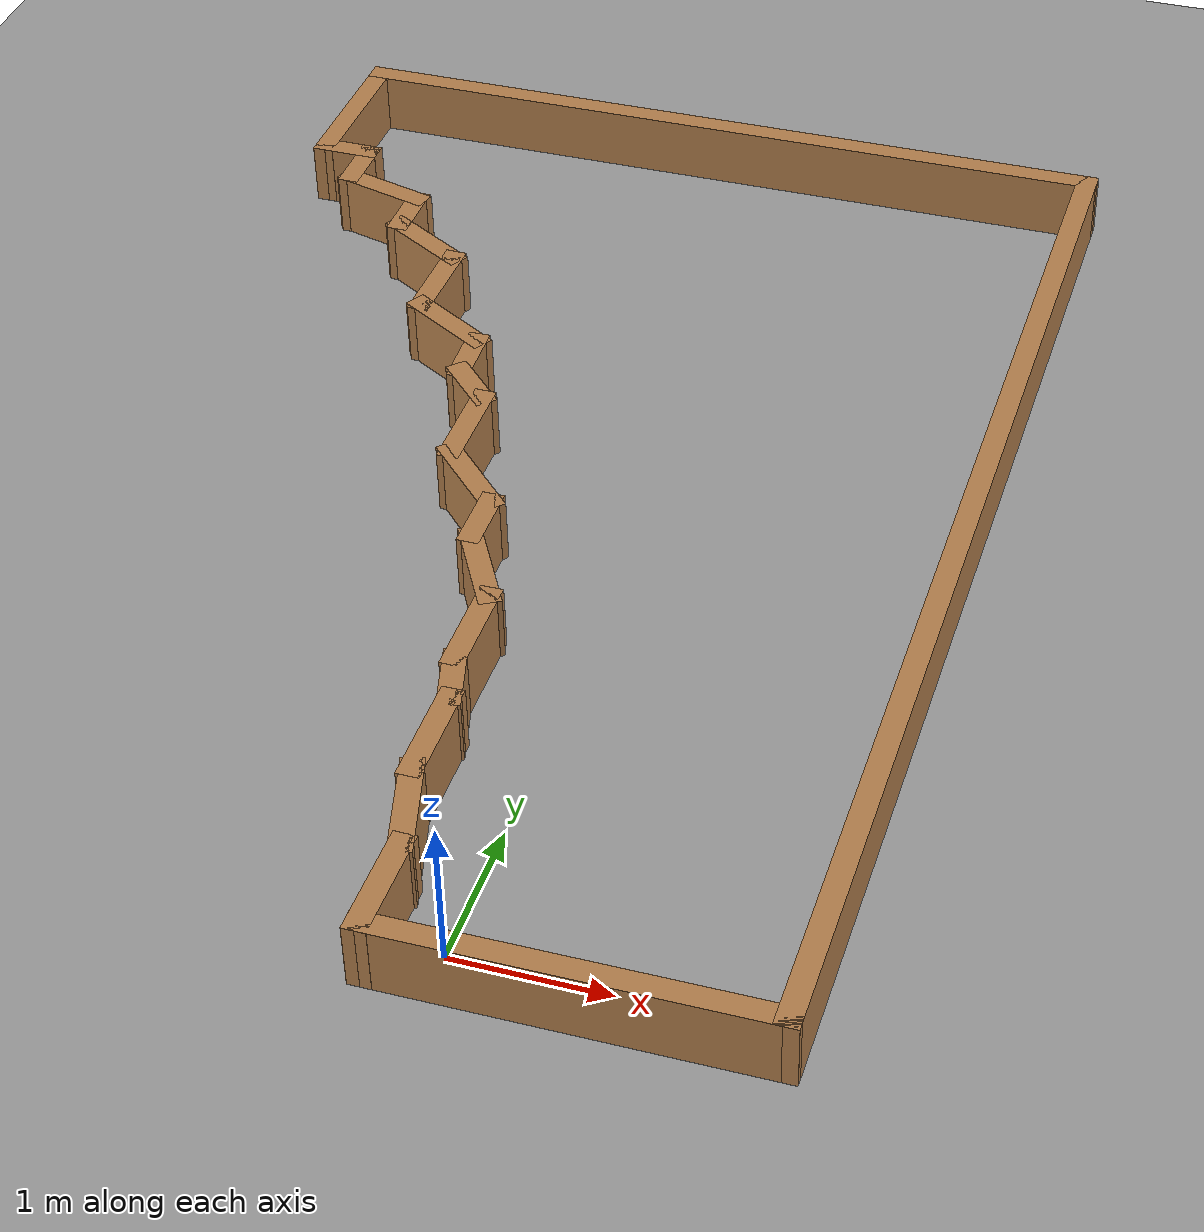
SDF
<sdf version="1.6">
 <world name="default">
  <light name="sun" type="directional">
   <pose>0 0 10 0 -0 0</pose>
   <diffuse>0.8 0.8 0.8 1</diffuse>
   <specular>0.2 0.2 0.2 1</specular>
   <attenuation>
    <range>1000</range>
    <constant>0.9</constant>
    <linear>0.01</linear>
    <quadratic>0.001</quadratic>
   </attenuation>
   <direction>-0.5 0.1 -0.9</direction>
  </light>
  <model name="ground_plane">
   <static>1</static>
   <link name="link">
    <collision name="collision">
     <geometry><plane><normal>0 0 1</normal><size>100 100</size></plane></geometry>
     <surface>
      <contact><collide_bitmask>65535</collide_bitmask></contact>
      <friction><ode><mu>100</mu><mu2>50</mu2></ode></friction>
     </surface>
    </collision>
    <visual name="visual">
     <cast_shadows>0</cast_shadows>
     <geometry><plane><normal>0 0 1</normal><size>100 100</size></plane></geometry>
     <material>
      <script><uri>file://media/materials/scripts/gazebo.material</uri><name>Gazebo/Grey</name></script>
     </material>
    </visual>
   </link>
  </model>
  <gravity>0 0 -9.8</gravity>
  <magnetic_field>6e-06 2.3e-05 -4.2e-05</magnetic_field>
  <atmosphere type="adiabatic"/>
  <physics name="default_physics" default="0" type="ode">
   <max_step_size>0.001</max_step_size>
   <real_time_factor>1</real_time_factor>
   <real_time_update_rate>0</real_time_update_rate>
  </physics>
  <scene><ambient>0.4 0.4 0.4 1</ambient><background>0.7 0.7 0.7 1</background><shadows>1</shadows></scene>
  <audio><device>default</device></audio>
  <spherical_coordinates>
   <surface_model>EARTH_WGS84</surface_model>
   <latitude_deg>0</latitude_deg>
   <longitude_deg>0</longitude_deg>
   <elevation>0</elevation>
   <heading_deg>0</heading_deg>
  </spherical_coordinates>
  <model name="10_90_left_right_turns">
   <pose>-0.729574 3.89798 0 0 -0 0</pose>
   <link name="Wall_10">
    <collision name="Wall_10_Collision">
     <geometry><box><size>0.749141 0.15 0.5</size></box></geometry>
     <pose>0 0 0.25 0 -0 0</pose>
    </collision>
    <visual name="Wall_10_Visual">
     <pose>0 0 0.25 0 -0 0</pose>
     <geometry><box><size>0.749141 0.15 0.5</size></box></geometry>
     <material>
      <script><uri>file://media/materials/scripts/gazebo.material</uri><name>Gazebo/Wood</name></script>
      <ambient>1 1 1 1</ambient>
     </material>
     <meta><layer>0</layer></meta>
    </visual>
    <pose>-1.36735 1.63373 0 0 -0 -1.5925</pose>
   </link>
   <link name="Wall_11">
    <collision name="Wall_11_Collision">
     <geometry><box><size>0.750405 0.15 0.5</size></box></geometry>
     <pose>0 0 0.25 0 -0 0</pose>
    </collision>
    <visual name="Wall_11_Visual">
     <pose>0 0 0.25 0 -0 0</pose>
     <geometry><box><size>0.750405 0.15 0.5</size></box></geometry>
     <material>
      <script><uri>file://media/materials/scripts/gazebo.material</uri><name>Gazebo/Wood</name></script>
      <ambient>1 1 1 1</ambient>
     </material>
     <meta><layer>0</layer></meta>
    </visual>
    <pose>-1.11385 1.18373 0 0 -0 -0.52472</pose>
   </link>
   <link name="Wall_12">
    <collision name="Wall_12_Collision">
     <geometry><box><size>0.506349 0.15 0.5</size></box></geometry>
     <pose>0 0 0.25 0 -0 0</pose>
    </collision>
    <visual name="Wall_12_Visual">
     <pose>0 0 0.25 0 -0 0</pose>
     <geometry><box><size>0.506349 0.15 0.5</size></box></geometry>
     <material>
      <script><uri>file://media/materials/scripts/gazebo.material</uri><name>Gazebo/Wood</name></script>
      <ambient>1 1 1 1</ambient>
     </material>
     <meta><layer>0</layer></meta>
    </visual>
    <pose>-0.847349 0.855233 0 0 -0 -1.5343</pose>
   </link>
   <link name="Wall_13">
    <collision name="Wall_13_Collision">
     <geometry><box><size>0.5 0.15 0.5</size></box></geometry>
     <pose>0 0 0.25 0 -0 0</pose>
    </collision>
    <visual name="Wall_13_Visual">
     <pose>0 0 0.25 0 -0 0</pose>
     <geometry><box><size>0.5 0.15 0.5</size></box></geometry>
     <material>
      <script><uri>file://media/materials/scripts/gazebo.material</uri><name>Gazebo/Wood</name></script>
      <ambient>1 1 1 1</ambient>
     </material>
     <meta><layer>0</layer></meta>
    </visual>
    <pose>-0.716849 0.553233 0 0 -0 -0.785398</pose>
   </link>
   <link name="Wall_14">
    <collision name="Wall_14_Collision">
     <geometry><box><size>0.75 0.15 0.5</size></box></geometry>
     <pose>0 0 0.25 0 -0 0</pose>
    </collision>
    <visual name="Wall_14_Visual">
     <pose>0 0 0.25 0 -0 0</pose>
     <geometry><box><size>0.75 0.15 0.5</size></box></geometry>
     <material>
      <script><uri>file://media/materials/scripts/gazebo.material</uri><name>Gazebo/Wood</name></script>
      <ambient>1 1 1 1</ambient>
     </material>
     <meta><layer>0</layer></meta>
    </visual>
    <pose>-0.592849 0.129233 0 0 -0 -1.5708</pose>
   </link>
   <link name="Wall_15">
    <collision name="Wall_15_Collision">
     <geometry><box><size>0.75 0.15 0.5</size></box></geometry>
     <pose>0 0 0.25 0 -0 0</pose>
    </collision>
    <visual name="Wall_15_Visual">
     <pose>0 0 0.25 0 -0 0</pose>
     <geometry><box><size>0.75 0.15 0.5</size></box></geometry>
     <material>
      <script><uri>file://media/materials/scripts/gazebo.material</uri><name>Gazebo/Wood</name></script>
      <ambient>1 1 1 1</ambient>
     </material>
     <meta><layer>0</layer></meta>
    </visual>
    <pose>-0.380849 -0.382767 0 0 -0 -0.785398</pose>
   </link>
   <link name="Wall_16">
    <collision name="Wall_16_Collision">
     <geometry><box><size>0.5 0.15 0.5</size></box></geometry>
     <pose>0 0 0.25 0 -0 0</pose>
    </collision>
    <visual name="Wall_16_Visual">
     <pose>0 0 0.25 0 -0 0</pose>
     <geometry><box><size>0.5 0.15 0.5</size></box></geometry>
     <material>
      <script><uri>file://media/materials/scripts/gazebo.material</uri><name>Gazebo/Wood</name></script>
      <ambient>1 1 1 1</ambient>
     </material>
     <meta><layer>0</layer></meta>
    </visual>
    <pose>-0.168849 -0.769767 0 0 -0 -1.5708</pose>
   </link>
   <link name="Wall_17">
    <collision name="Wall_17_Collision">
     <geometry><box><size>0.75 0.15 0.5</size></box></geometry>
     <pose>0 0 0.25 0 -0 0</pose>
    </collision>
    <visual name="Wall_17_Visual">
     <pose>0 0 0.25 0 -0 0</pose>
     <geometry><box><size>0.75 0.15 0.5</size></box></geometry>
     <material>
      <script><uri>file://media/materials/scripts/gazebo.material</uri><name>Gazebo/Wood</name></script>
      <ambient>1 1 1 1</ambient>
     </material>
     <meta><layer>0</layer></meta>
    </visual>
    <pose>-0.018849 -1.20427 0 0 -0 -1.04668</pose>
   </link>
   <link name="Wall_18">
    <collision name="Wall_18_Collision">
     <geometry><box><size>0.737 0.15 0.5</size></box></geometry>
     <pose>0 0 0.25 0 -0 0</pose>
    </collision>
    <visual name="Wall_18_Visual">
     <pose>0 0 0.25 0 -0 0</pose>
     <geometry><box><size>0.737 0.15 0.5</size></box></geometry>
     <material>
      <script><uri>file://media/materials/scripts/gazebo.material</uri><name>Gazebo/Wood</name></script>
      <ambient>1 1 1 1</ambient>
     </material>
     <meta><layer>0</layer></meta>
    </visual>
    <pose>0.131151 -1.75727 0 0 -0 -1.5708</pose>
   </link>
   <link name="Wall_19">
    <collision name="Wall_19_Collision">
     <geometry><box><size>0.500402 0.15 0.5</size></box></geometry>
     <pose>0 0 0.25 0 -0 0</pose>
    </collision>
    <visual name="Wall_19_Visual">
     <pose>0 0 0.25 0 -0 0</pose>
     <geometry><box><size>0.500402 0.15 0.5</size></box></geometry>
     <material>
      <script><uri>file://media/materials/scripts/gazebo.material</uri><name>Gazebo/Wood</name></script>
      <ambient>1 1 1 1</ambient>
     </material>
     <meta><layer>0</layer></meta>
    </visual>
    <pose>0.176151 -2.21977 0 0 -0 -1.31056</pose>
   </link>
   <link name="Wall_20">
    <collision name="Wall_20_Collision">
     <geometry><box><size>0.764 0.15 0.5</size></box></geometry>
     <pose>0 0 0.25 0 -0 0</pose>
    </collision>
    <visual name="Wall_20_Visual">
     <pose>0 0 0.25 0 -0 0</pose>
     <geometry><box><size>0.764 0.15 0.5</size></box></geometry>
     <material>
      <script><uri>file://media/materials/scripts/gazebo.material</uri><name>Gazebo/Wood</name></script>
      <ambient>1 1 1 1</ambient>
     </material>
     <meta><layer>0</layer></meta>
    </visual>
    <pose>0.221151 -2.69577 0 0 -0 -1.5708</pose>
   </link>
   <link name="Wall_22">
    <collision name="Wall_22_Collision">
     <geometry><box><size>0.75 0.15 0.5</size></box></geometry>
     <pose>0 0 0.25 0 -0 0</pose>
    </collision>
    <visual name="Wall_22_Visual">
     <pose>0 0 0.25 0 -0 0</pose>
     <geometry><box><size>0.75 0.15 0.5</size></box></geometry>
     <material>
      <script><uri>file://media/materials/scripts/gazebo.material</uri><name>Gazebo/Wood</name></script>
      <ambient>1 1 1 1</ambient>
     </material>
     <meta><layer>0</layer></meta>
    </visual>
    <pose>0.299151 -3.29227 0 0 -0 -1.30762</pose>
   </link>
   <link name="Wall_23">
    <collision name="Wall_23_Collision">
     <geometry><box><size>0.762929 0.15 0.5</size></box></geometry>
     <pose>0 0 0.25 0 -0 0</pose>
    </collision>
    <visual name="Wall_23_Visual">
     <pose>0 0 0.25 0 -0 0</pose>
     <geometry><box><size>0.762929 0.15 0.5</size></box></geometry>
     <material>
      <script><uri>file://media/materials/scripts/gazebo.material</uri><name>Gazebo/Wood</name></script>
      <ambient>1 1 1 1</ambient>
     </material>
     <meta><layer>0</layer></meta>
    </visual>
    <pose>0.373651 -3.88827 0 0 -0 -1.58221</pose>
   </link>
   <link name="Wall_30">
    <collision name="Wall_30_Collision">
     <geometry><box><size>5.749 0.15 0.5</size></box></geometry>
     <pose>0 0 0.25 0 -0 0</pose>
    </collision>
    <visual name="Wall_30_Visual">
     <pose>0 0 0.25 0 -0 0</pose>
     <geometry><box><size>5.749 0.15 0.5</size></box></geometry>
     <material>
      <script><uri>file://media/materials/scripts/gazebo.material</uri><name>Gazebo/Wood</name></script>
      <ambient>1 1 1 1</ambient>
     </material>
     <meta><layer>0</layer></meta>
    </visual>
    <pose>0.003651 4.19223 0 0 -0 0.001072</pose>
   </link>
   <link name="Wall_31">
    <collision name="Wall_31_Collision">
     <geometry><box><size>8.52634 0.15 0.5</size></box></geometry>
     <pose>0 0 0.25 0 -0 0</pose>
    </collision>
    <visual name="Wall_31_Visual">
     <pose>0 0 0.25 0 -0 0</pose>
     <geometry><box><size>8.52634 0.15 0.5</size></box></geometry>
     <material>
      <script><uri>file://media/materials/scripts/gazebo.material</uri><name>Gazebo/Wood</name></script>
      <ambient>1 1 1 1</ambient>
     </material>
     <meta><layer>0</layer></meta>
    </visual>
    <pose>2.79365 0.007233 0 0 -0 -1.57306</pose>
   </link>
   <link name="Wall_32">
    <collision name="Wall_32_Collision">
     <geometry><box><size>2.56363 0.15 0.5</size></box></geometry>
     <pose>0 0 0.25 0 -0 0</pose>
    </collision>
    <visual name="Wall_32_Visual">
     <pose>0 0 0.25 0 -0 0</pose>
     <geometry><box><size>2.56363 0.15 0.5</size></box></geometry>
     <material>
      <script><uri>file://media/materials/scripts/gazebo.material</uri><name>Gazebo/Wood</name></script>
      <ambient>1 1 1 1</ambient>
     </material>
     <meta><layer>0</layer></meta>
    </visual>
    <pose>1.57715 -4.18777 0 0 -0 -3.13579</pose>
   </link>
   <link name="Wall_4">
    <collision name="Wall_4_Collision">
     <geometry><box><size>1.25684 0.15 0.5</size></box></geometry>
     <pose>0 0 0.25 0 -0 0</pose>
    </collision>
    <visual name="Wall_4_Visual">
     <pose>0 0 0.25 0 -0 0</pose>
     <geometry><box><size>1.25684 0.15 0.5</size></box></geometry>
     <material>
      <script><uri>file://media/materials/scripts/gazebo.material</uri><name>Gazebo/Wood</name></script>
      <ambient>1 1 1 1</ambient>
     </material>
     <meta><layer>0</layer></meta>
    </visual>
    <pose>-2.79935 3.63573 0 0 -0 -1.57712</pose>
   </link>
   <link name="Wall_5">
    <collision name="Wall_5_Collision">
     <geometry><box><size>0.493233 0.15 0.5</size></box></geometry>
     <pose>0 0 0.25 0 -0 0</pose>
    </collision>
    <visual name="Wall_5_Visual">
     <pose>0 0 0.25 0 -0 0</pose>
     <geometry><box><size>0.493233 0.15 0.5</size></box></geometry>
     <material>
      <script><uri>file://media/materials/scripts/gazebo.material</uri><name>Gazebo/Wood</name></script>
      <ambient>1 1 1 1</ambient>
     </material>
     <meta><layer>0</layer></meta>
    </visual>
    <pose>-2.63135 3.08223 0 0 -0 0</pose>
   </link>
   <link name="Wall_6">
    <collision name="Wall_6_Collision">
     <geometry><box><size>0.5 0.15 0.5</size></box></geometry>
     <pose>0 0 0.25 0 -0 0</pose>
    </collision>
    <visual name="Wall_6_Visual">
     <pose>0 0 0.25 0 -0 0</pose>
     <geometry><box><size>0.5 0.15 0.5</size></box></geometry>
     <material>
      <script><uri>file://media/materials/scripts/gazebo.material</uri><name>Gazebo/Wood</name></script>
      <ambient>1 1 1 1</ambient>
     </material>
     <meta><layer>0</layer></meta>
    </visual>
    <pose>-2.45985 2.90723 0 0 -0 -1.5708</pose>
   </link>
   <link name="Wall_7">
    <collision name="Wall_7_Collision">
     <geometry><box><size>0.75 0.15 0.5</size></box></geometry>
     <pose>0 0 0.25 0 -0 0</pose>
    </collision>
    <visual name="Wall_7_Visual">
     <pose>0 0 0.25 0 -0 0</pose>
     <geometry><box><size>0.75 0.15 0.5</size></box></geometry>
     <material>
      <script><uri>file://media/materials/scripts/gazebo.material</uri><name>Gazebo/Wood</name></script>
      <ambient>1 1 1 1</ambient>
     </material>
     <meta><layer>0</layer></meta>
    </visual>
    <pose>-2.16985 2.65473 0 0 -0 -0.261139</pose>
   </link>
   <link name="Wall_8">
    <collision name="Wall_8_Collision">
     <geometry><box><size>0.493 0.15 0.5</size></box></geometry>
     <pose>0 0 0.25 0 -0 0</pose>
    </collision>
    <visual name="Wall_8_Visual">
     <pose>0 0 0.25 0 -0 0</pose>
     <geometry><box><size>0.493 0.15 0.5</size></box></geometry>
     <material>
      <script><uri>file://media/materials/scripts/gazebo.material</uri><name>Gazebo/Wood</name></script>
      <ambient>1 1 1 1</ambient>
     </material>
     <meta><layer>0</layer></meta>
    </visual>
    <pose>-1.87985 2.40573 0 0 -0 -1.5708</pose>
   </link>
   <link name="Wall_9">
    <collision name="Wall_9_Collision">
     <geometry><box><size>0.749872 0.15 0.5</size></box></geometry>
     <pose>0 0 0.25 0 -0 0</pose>
    </collision>
    <visual name="Wall_9_Visual">
     <pose>0 0 0.25 0 -0 0</pose>
     <geometry><box><size>0.749872 0.15 0.5</size></box></geometry>
     <material>
      <script><uri>file://media/materials/scripts/gazebo.material</uri><name>Gazebo/Wood</name></script>
      <ambient>1 1 1 1</ambient>
     </material>
     <meta><layer>0</layer></meta>
    </visual>
    <pose>-1.62035 2.08373 0 0 -0 -0.525555</pose>
   </link>
   <static>1</static>
  </model>
  <model name="ground_plane_0">
   <static>1</static>
   <link name="link">
    <collision name="collision">
     <geometry><plane><normal>0 0 1</normal><size>100 100</size></plane></geometry>
     <surface>
      <contact><collide_bitmask>65535</collide_bitmask></contact>
      <friction><ode><mu>100</mu><mu2>50</mu2></ode></friction>
     </surface>
    </collision>
    <visual name="visual">
     <cast_shadows>0</cast_shadows>
     <geometry><plane><normal>0 0 1</normal><size>100 100</size></plane></geometry>
     <material>
      <script><uri>file://media/materials/scripts/gazebo.material</uri><name>Gazebo/Grey</name></script>
     </material>
    </visual>
   </link>
   <pose>0.24722 1.44565 0 0 -0 0</pose>
  </model>
 </world>
</sdf>
